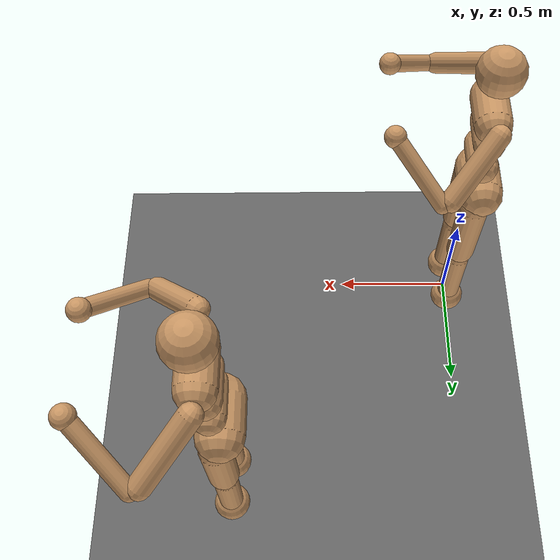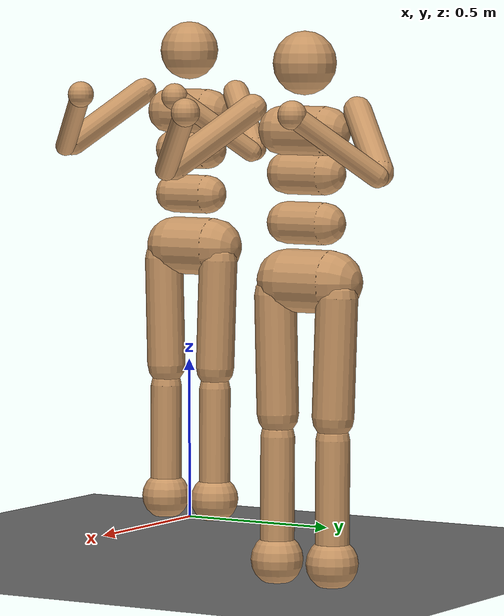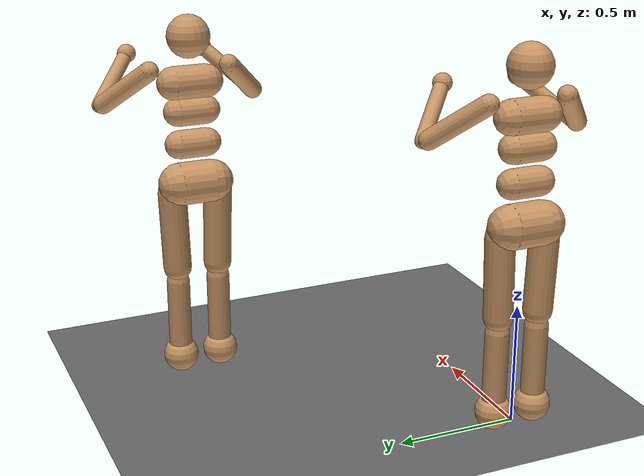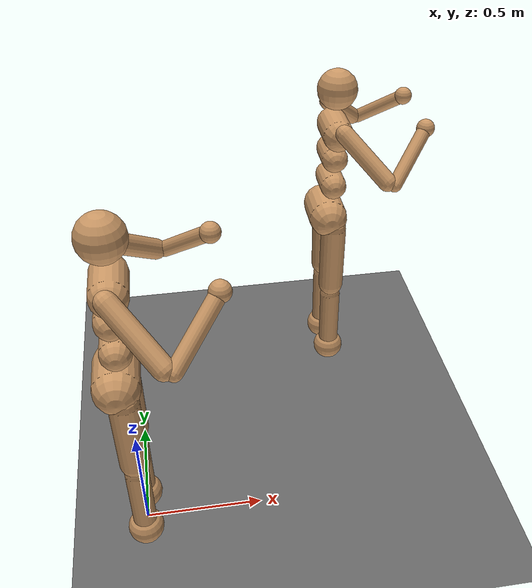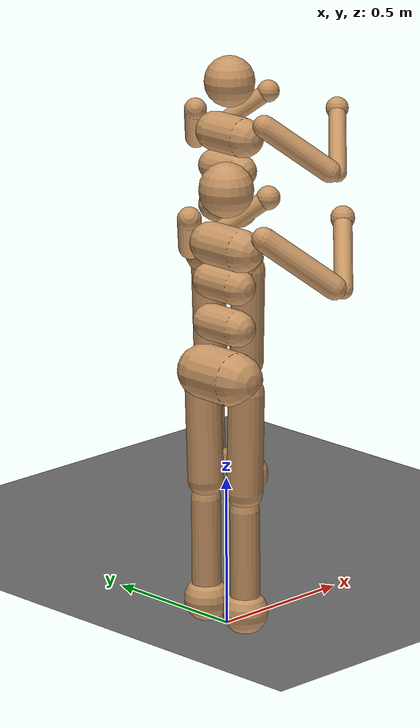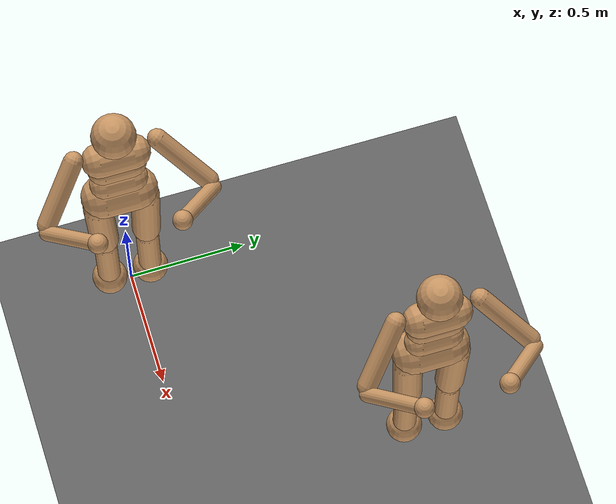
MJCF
<mujoco model="humanoid_2">
    <compiler angle="degree" inertiafromgeom="true"/>
    <default>
        <joint armature="1" damping="1" limited="true"/>
        <geom conaffinity="0" condim="3" contype="0" material="geom"/>
        <motor ctrllimited="true" ctrlrange="-.4 .4"/>
    </default>
    <!-- Removed RK4 integrator for brax. -->
    <option iterations="4" timestep="0.003"/>
    <custom>
        <!-- brax custom params -->
        <numeric data="2500" name="constraint_limit_stiffness"/>
        <numeric data="27000" name="constraint_stiffness"/>
        <numeric data="30" name="constraint_ang_damping"/>
        <numeric data="80" name="constraint_vel_damping"/>
        <numeric data="-0.05" name="ang_damping"/>
        <numeric data="0.5" name="joint_scale_pos"/>
        <numeric data="0.1" name="joint_scale_ang"/>
        <numeric data="0" name="spring_mass_scale"/>
        <numeric data="1" name="spring_inertia_scale"/>
        <numeric data="20" name="matrix_inv_iterations"/>
        <numeric data="15" name="solver_maxls"/>
    </custom>
    <size nkey="5" nuser_geom="1"/>
    <visual>
        <map fogend="5" fogstart="3"/>
    </visual>
    <asset>
        <texture builtin="gradient" height="100" rgb1=".4 .5 .6" rgb2="0 0 0" type="skybox" width="100"/>
        <texture builtin="flat" height="1278" mark="cross" markrgb="1 1 1" name="texgeom" random="0.01" rgb1="0.8 0.6 0.4" rgb2="0.8 0.6 0.4" type="cube" width="127"/>
        <texture builtin="checker" height="100" name="texplane" rgb1="0 0 0" rgb2="0.8 0.8 0.8" type="2d" width="100"/>
        <material name="MatPlane" reflectance="0.5" shininess="1" specular="1" texrepeat="60 60" texture="texplane"/>
        <material name="geom" texture="texgeom" texuniform="true"/>
    </asset>
    <worldbody>
        <light cutoff="100" diffuse="1 1 1" dir="-0 0 -1.3" directional="true" exponent="1" pos="0 0 1.3" specular=".1 .1 .1"/>
        <geom conaffinity="1" condim="3" friction="1 .1 .1" material="MatPlane" name="floor" pos="0 0 0" size="20 20 0.125" type="plane"/>
        <body name="torso_h1" pos="0 0 1.28">
            <camera name="track_h1" mode="trackcom" pos="0 -4 0" xyaxes="1 0 0 0 0 1"/>
            <joint armature="0" damping="0" limited="false" name="root_h1" pos="0 0 0" stiffness="0" type="free"/>
            <geom fromto="0 -.07 0 0 .07 0" name="torso1_h1" size="0.07" type="capsule" contype="1"/>
            <geom name="head_h1" pos="0 0 .19" size=".09" type="sphere" user="258" contype="1"/>
            <geom fromto="-.01 -.06 -.12 -.01 .06 -.12" name="uwaist_h1" size="0.06" type="capsule" contype="1"/>
            <body name="lwaist_h1" pos="-.01 0 -0.260" quat="1.000 0 -0.002 0">
                <geom fromto="0 -.06 0 0 .06 0" name="lwaist_h1" size="0.06" type="capsule" contype="1"/>
                <joint armature="0.02" axis="0 0 1" damping="5" name="abdomen_z_h1" pos="0 0 0.065" range="-45 45" stiffness="20" type="hinge"/>
                <joint armature="0.02" axis="0 1 0" damping="5" name="abdomen_y_h1" pos="0 0 0.065" range="-75 30" stiffness="10" type="hinge"/>
                <body name="pelvis_h1" pos="0 0 -0.165" quat="1.000 0 -0.002 0">
                    <joint armature="0.02" axis="1 0 0" damping="5" name="abdomen_x_h1" pos="0 0 0.1" range="-35 35" stiffness="10" type="hinge"/>
                    <geom fromto="-.02 -.07 0 -.02 .07 0" name="butt_h1" size="0.09" type="capsule" contype="1"/>
                    <body name="right_thigh_h1" pos="0 -0.1 -0.04">
                        <joint armature="0.01" axis="1 0 0" damping="5" name="right_hip_x_h1" pos="0 0 0" range="-25 5" stiffness="10" type="hinge"/>
                        <joint armature="0.01" axis="0 0 1" damping="5" name="right_hip_z_h1" pos="0 0 0" range="-60 35" stiffness="10" type="hinge"/>
                        <joint armature="0.0080" axis="0 1 0" damping="5" name="right_hip_y_h1" pos="0 0 0" range="-110 20" stiffness="20" type="hinge"/>
                        <geom fromto="0 0 0 0 0.01 -.34" name="right_thigh1_h1" size="0.06" type="capsule" contype="1"/>
                        <body name="right_shin_h1" pos="0 0.01 -0.403">
                            <joint armature="0.0060" axis="0 -1 0" name="right_knee_h1" pos="0 0 .02" range="-160 -2" type="hinge"/>
                            <geom fromto="0 0 0 0 0 -.3" name="right_shin1_h1" size="0.049" type="capsule" contype="1"/>
                            <body name="right_foot_h1" pos="0 0 -0.45">
                                <geom contype="1" name="right_foot_h1" pos="0 0 0.1" size="0.075" type="sphere" user="0"/>
                            </body>
                        </body>
                    </body>
                    <body name="left_thigh_h1" pos="0 0.1 -0.04">
                        <joint armature="0.01" axis="-1 0 0" damping="5" name="left_hip_x_h1" pos="0 0 0" range="-25 5" stiffness="10" type="hinge"/>
                        <joint armature="0.01" axis="0 0 -1" damping="5" name="left_hip_z_h1" pos="0 0 0" range="-60 35" stiffness="10" type="hinge"/>
                        <joint armature="0.01" axis="0 1 0" damping="5" name="left_hip_y_h1" pos="0 0 0" range="-110 20" stiffness="20" type="hinge"/>
                        <geom fromto="0 0 0 0 -0.01 -.34" name="left_thigh1_h1" size="0.06" type="capsule" contype="1"/>
                        <body name="left_shin_h2_h1" pos="0 -0.01 -0.403">
                            <joint armature="0.0060" axis="0 -1 0" name="left_knee_h1" pos="0 0 .02" range="-160 -2" stiffness="1" type="hinge"/>
                            <geom fromto="0 0 0 0 0 -.3" name="left_shin1_h1" size="0.049" type="capsule" contype="1"/>
                            <body name="left_foot_h1" pos="0 0 -0.45">
                                <geom contype="1" name="left_foot_h1" type="sphere" size="0.075" pos="0 0 0.1" user="0" />
                            </body>
                        </body>
                    </body>
                </body>
            </body>
            <body name="right_upper_arm_h1" pos="0 -0.17 0.06">
                <joint armature="0.0068" axis="2 1 1" name="right_shoulder1_h1" pos="0 0 0" range="-85 60" stiffness="1" type="hinge"/>
                <joint armature="0.0051" axis="0 -1 1" name="right_shoulder2_h1" pos="0 0 0" range="-85 60" stiffness="1" type="hinge"/>
                <geom fromto="0 0 0 .16 -.16 -.16" name="right_uarm1_h1" size="0.04 0.16" type="capsule" contype="1"/>
                <body name="right_lower_arm_h1" pos=".18 -.18 -.18">
                    <joint armature="0.0028" axis="0 -1 1" name="right_elbow_h1" pos="0 0 0" range="-90 50" stiffness="0" type="hinge"/>
                    <geom fromto="0.01 0.01 0.01 .17 .17 .17" name="right_larm_h1" size="0.031" type="capsule" contype="1"/>
                    <geom name="right_hand_h1" pos=".18 .18 .18" size="0.04" type="sphere" contype="1"/>
                    <camera pos="0 0 0"/>
                </body>
            </body>
            <body name="left_upper_arm_h1" pos="0 0.17 0.06">
                <joint armature="0.0068" axis="2 -1 1" name="left_shoulder1_h1" pos="0 0 0" range="-60 85" stiffness="1" type="hinge"/>
                <joint armature="0.0051" axis="0 1 1" name="left_shoulder2_h1" pos="0 0 0" range="-60 85" stiffness="1" type="hinge"/>
                <geom fromto="0 0 0 .16 .16 -.16" name="left_uarm1_h1" size="0.04 0.16" type="capsule" contype="1"/>
                <body name="left_lower_arm_h1" pos=".18 .18 -.18">
                    <joint armature="0.0028" axis="0 -1 -1" name="left_elbow_h1" pos="0 0 0" range="-90 50" stiffness="0" type="hinge"/>
                    <geom fromto="0.01 -0.01 0.01 .17 -.17 .17" name="left_larm_h1" size="0.031" type="capsule" contype="1"/>
                    <geom name="left_hand_h1" pos=".18 -.18 .18" size="0.04" type="sphere" contype="1"/>
                </body>
            </body>
        </body>

        <body name="torso_h2" pos="1.0 1.0 1.28">
            <camera name="track_h2" mode="trackcom" pos="0 -4 0" xyaxes="1 0 0 0 0 1"/>
            <joint armature="0" damping="0" limited="false" name="root_h2" pos="0 0 0" stiffness="0" type="free"/>
            <geom fromto="0 -.07 0 0 .07 0" name="torso1_h2" size="0.07" type="capsule" contype="1"/>
            <geom name="head_h2" pos="0 0 .19" size=".09" type="sphere" user="258" contype="1"/>
            <geom fromto="-.01 -.06 -.12 -.01 .06 -.12" name="uwaist_h2" size="0.06" type="capsule" contype="1"/>
            <body name="lwaist_h2" pos="-.01 0 -0.260" quat="1.000 0 -0.002 0">
                <geom fromto="0 -.06 0 0 .06 0" name="lwaist_h2" size="0.06" type="capsule" contype="1"/>
                <joint armature="0.02" axis="0 0 1" damping="5" name="abdomen_z_h2" pos="0 0 0.065" range="-45 45" stiffness="20" type="hinge"/>
                <joint armature="0.02" axis="0 1 0" damping="5" name="abdomen_y_h2" pos="0 0 0.065" range="-75 30" stiffness="10" type="hinge"/>
                <body name="pelvis_h2" pos="0 0 -0.165" quat="1.000 0 -0.002 0">
                    <joint armature="0.02" axis="1 0 0" damping="5" name="abdomen_x_h2" pos="0 0 0.1" range="-35 35" stiffness="10" type="hinge"/>
                    <geom fromto="-.02 -.07 0 -.02 .07 0" name="butt_h2" size="0.09" type="capsule" contype="1"/>
                    <body name="right_thigh_h2" pos="0 -0.1 -0.04">
                        <joint armature="0.01" axis="1 0 0" damping="5" name="right_hip_x_h2" pos="0 0 0" range="-25 5" stiffness="10" type="hinge"/>
                        <joint armature="0.01" axis="0 0 1" damping="5" name="right_hip_z_h2" pos="0 0 0" range="-60 35" stiffness="10" type="hinge"/>
                        <joint armature="0.0080" axis="0 1 0" damping="5" name="right_hip_y_h2" pos="0 0 0" range="-110 20" stiffness="20" type="hinge"/>
                        <geom fromto="0 0 0 0 0.01 -.34" name="right_thigh1_h2" size="0.06" type="capsule" contype="1"/>
                        <body name="right_shin_h2" pos="0 0.01 -0.403">
                            <joint armature="0.0060" axis="0 -1 0" name="right_knee_h2" pos="0 0 .02" range="-160 -2" type="hinge"/>
                            <geom fromto="0 0 0 0 0 -.3" name="right_shin1_h2" size="0.049" type="capsule" contype="1"/>
                            <body name="right_foot_h2" pos="0 0 -0.45">
                                <geom contype="1" name="right_foot_h2" pos="0 0 0.1" size="0.075" type="sphere" user="0"/>
                            </body>
                        </body>
                    </body>
                    <body name="left_thigh_h2" pos="0 0.1 -0.04">
                        <joint armature="0.01" axis="-1 0 0" damping="5" name="left_hip_x_h2" pos="0 0 0" range="-25 5" stiffness="10" type="hinge"/>
                        <joint armature="0.01" axis="0 0 -1" damping="5" name="left_hip_z_h2" pos="0 0 0" range="-60 35" stiffness="10" type="hinge"/>
                        <joint armature="0.01" axis="0 1 0" damping="5" name="left_hip_y_h2" pos="0 0 0" range="-110 20" stiffness="20" type="hinge"/>
                        <geom fromto="0 0 0 0 -0.01 -.34" name="left_thigh1_h2" size="0.06" type="capsule" contype="1"/>
                        <body name="left_shin_h2_h2" pos="0 -0.01 -0.403">
                            <joint armature="0.0060" axis="0 -1 0" name="left_knee_h2" pos="0 0 .02" range="-160 -2" stiffness="1" type="hinge"/>
                            <geom fromto="0 0 0 0 0 -.3" name="left_shin1_h2" size="0.049" type="capsule" contype="1"/>
                            <body name="left_foot_h2" pos="0 0 -0.45">
                                <geom contype="1" name="left_foot_h2" type="sphere" size="0.075" pos="0 0 0.1" user="0"/>
                            </body>
                        </body>
                    </body>
                </body>
            </body>
            <body name="right_upper_arm_h2" pos="0 -0.17 0.06">
                <joint armature="0.0068" axis="2 1 1" name="right_shoulder1_h2" pos="0 0 0" range="-85 60" stiffness="1" type="hinge"/>
                <joint armature="0.0051" axis="0 -1 1" name="right_shoulder2_h2" pos="0 0 0" range="-85 60" stiffness="1" type="hinge"/>
                <geom fromto="0 0 0 .16 -.16 -.16" name="right_uarm1_h2" size="0.04 0.16" type="capsule" contype="1"/>
                <body name="right_lower_arm_h2" pos=".18 -.18 -.18">
                    <joint armature="0.0028" axis="0 -1 1" name="right_elbow_h2" pos="0 0 0" range="-90 50" stiffness="0" type="hinge" />
                    <geom fromto="0.01 0.01 0.01 .17 .17 .17" name="right_larm_h2" size="0.031" type="capsule" contype="1"/>
                    <geom name="right_hand_h2" pos=".18 .18 .18" size="0.04" type="sphere" contype="1"/>
                    <camera pos="0 0 0"/>
                </body>
            </body>
            <body name="left_upper_arm_h2" pos="0 0.17 0.06">
                <joint armature="0.0068" axis="2 -1 1" name="left_shoulder1_h2" pos="0 0 0" range="-60 85" stiffness="1" type="hinge"/>
                <joint armature="0.0051" axis="0 1 1" name="left_shoulder2_h2" pos="0 0 0" range="-60 85" stiffness="1" type="hinge"/>
                <geom fromto="0 0 0 .16 .16 -.16" name="left_uarm1_h2" size="0.04 0.16" type="capsule" contype="1"/>
                <body name="left_lower_arm_h2" pos=".18 .18 -.18">
                    <joint armature="0.0028" axis="0 -1 -1" name="left_elbow_h2" pos="0 0 0" range="-90 50" stiffness="0" type="hinge"/>
                    <geom fromto="0.01 -0.01 0.01 .17 -.17 .17" name="left_larm_h2" size="0.031" type="capsule" contype="1"/>
                    <geom name="left_hand_h2" pos=".18 -.18 .18" size="0.04" type="sphere" contype="1"/>
                </body>
            </body>
        </body>
    </worldbody>

    <actuator>
    <motor gear="100" joint="abdomen_y_h1" name="abdomen_y_h1"/>
    <motor gear="100" joint="abdomen_z_h1" name="abdomen_z_h1"/>
    <motor gear="100" joint="abdomen_x_h1" name="abdomen_x_h1"/>
    <motor gear="100" joint="right_hip_x_h1" name="right_hip_x_h1"/>
    <motor gear="100" joint="right_hip_z_h1" name="right_hip_z_h1"/>
    <motor gear="300" joint="right_hip_y_h1" name="right_hip_y_h1"/>
    <motor gear="200" joint="right_knee_h1" name="right_knee_h1"/>
    <motor gear="100" joint="left_hip_x_h1" name="left_hip_x_h1"/>
    <motor gear="100" joint="left_hip_z_h1" name="left_hip_z_h1"/>
    <motor gear="300" joint="left_hip_y_h1" name="left_hip_y_h1"/>
    <motor gear="200" joint="left_knee_h1" name="left_knee_h1"/>
    <motor gear="25" joint="right_shoulder1_h1" name="right_shoulder1_h1"/>
    <motor gear="25" joint="right_shoulder2_h1" name="right_shoulder2_h1"/>
    <motor gear="25" joint="right_elbow_h1" name="right_elbow_h1"/>
    <motor gear="25" joint="left_shoulder1_h1" name="left_shoulder1_h1"/>
    <motor gear="25" joint="left_shoulder2_h1" name="left_shoulder2_h1"/>
    <motor gear="25" joint="left_elbow_h1" name="left_elbow_h1"/>

    <motor gear="100" joint="abdomen_y_h2" name="abdomen_y_h2"/>
    <motor gear="100" joint="abdomen_z_h2" name="abdomen_z_h2"/>
    <motor gear="100" joint="abdomen_x_h2" name="abdomen_x_h2"/>
    <motor gear="100" joint="right_hip_x_h2" name="right_hip_x_h2"/>
    <motor gear="100" joint="right_hip_z_h2" name="right_hip_z_h2"/>
    <motor gear="300" joint="right_hip_y_h2" name="right_hip_y_h2"/>
    <motor gear="200" joint="right_knee_h2" name="right_knee_h2"/>
    <motor gear="100" joint="left_hip_x_h2" name="left_hip_x_h2"/>
    <motor gear="100" joint="left_hip_z_h2" name="left_hip_z_h2"/>
    <motor gear="300" joint="left_hip_y_h2" name="left_hip_y_h2"/>
    <motor gear="200" joint="left_knee_h2" name="left_knee_h2"/>
    <motor gear="25" joint="right_shoulder1_h2" name="right_shoulder1_h2"/>
    <motor gear="25" joint="right_shoulder2_h2" name="right_shoulder2_h2"/>
    <motor gear="25" joint="right_elbow_h2" name="right_elbow_h2"/>
    <motor gear="25" joint="left_shoulder1_h2" name="left_shoulder1_h2"/>
    <motor gear="25" joint="left_shoulder2_h2" name="left_shoulder2_h2"/>
    <motor gear="25" joint="left_elbow_h2" name="left_elbow_h2"/>

    </actuator>
</mujoco>
